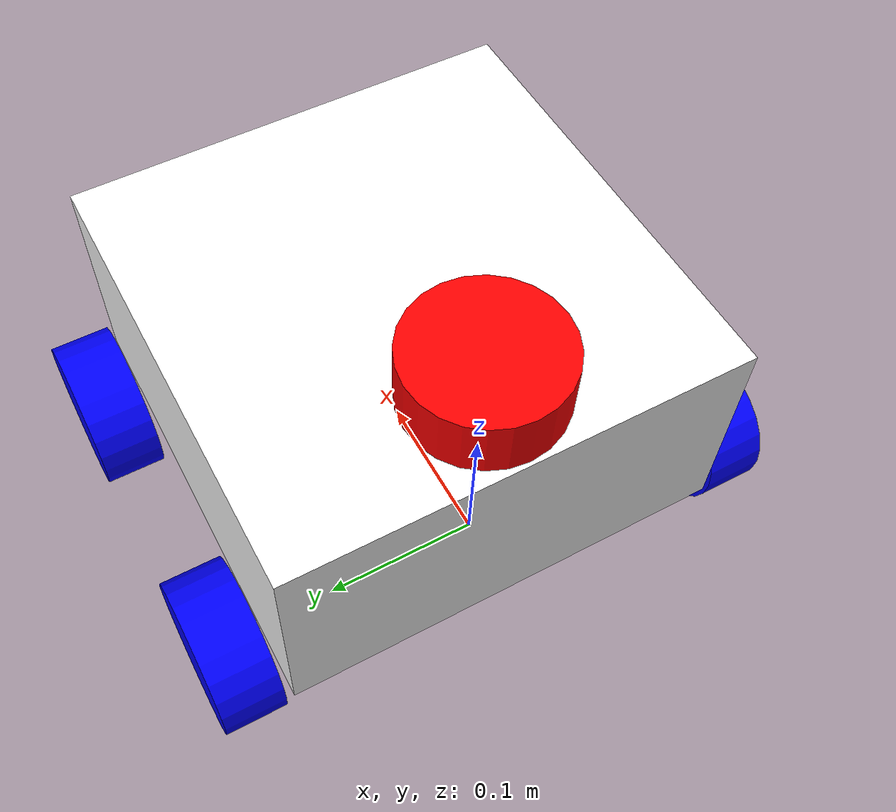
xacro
<?xml version="1.0"?>
<robot xmlns:xacro="http://www.ros.org/wiki/xacro"  name="robot">
    <xacro:arg name="use_ros2_control" default="true"/>

    <xacro:include filename="robot_core.xacro" />
    <!-- Switch between ros2_control and Gazebo integrated diff-drive control -->
    <xacro:if value="$(arg use_ros2_control)">
        <xacro:include filename="ros2_control.xacro" />
    </xacro:if>
    <xacro:unless value="$(arg use_ros2_control)">
        <xacro:include filename="gazebo_control.xacro" />
    </xacro:unless>
    <xacro:include filename="lidar.xacro" />
    <xacro:include filename="camera.xacro"/>
</robot>

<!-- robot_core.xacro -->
<robot xmlns:xacro="http://www.ros.org/wiki/xacro">

    <xacro:include filename="inertial_macros.xacro" />

    <material name="grey">
        <color rgba="0.2 0.2 0.2 1"/>
    </material>

    <material name="white">
        <color rgba="1 1 1 1"/>
    </material>

    <material name="orange">
        <color rgba="1 0.3 0.1 1"/>
    </material>

    <material name="blue">
        <color rgba="0 0 1 1"/>
    </material>

    <material name="red">
        <color rgba="1 0 0 1"/>
    </material>

    <link name="base">
        <inertial>
            <mass value="0.1"/>
            <inertia ixx="0.001" ixy="0" ixz="0" iyy="0.001" iyz="0" izz="0.001"/>
        </inertial>
    </link>

    <joint name="base_footprint_joint" type="fixed">
        <parent link="base"/>
        <child link="base_footprint"/>
        <origin xyz="0 0 0" rpy="0 0 0"/>
    </joint>

    <link name="base_footprint"></link>

    <joint name="chasis_joint" type="fixed">
        <parent link="base"/>
        <child link="chassis"/>
        <origin xyz="-0.1 0 0"/>
    </joint>

    <link name="chassis">
        <visual>
            <origin xyz="0.2 0 0.075"/>
            <geometry>
                <box size="0.3 0.3 0.15"/>
            </geometry>
            <material name="white"/>
        </visual>
        <collision>
            <origin xyz="0.2 0 0.075"/>
            <geometry>
                <box size="0.3 0.3 0.15"/>
            </geometry>
        </collision>
        <xacro:inertial_box mass="0.5" x="0.3" y="0.3" z="0.15">
            <origin xyz="0.15 0 0.075" rpy="0 0 0"/>
        </xacro:inertial_box>
    </link>

<!-- WHEELS -->
    <joint name="front_left_wheel_joint" type="continuous">
        <parent link="base"/>
        <child link="front_left_wheel"/>
        <origin xyz="0 0.175 0" rpy="${-pi/2} 0 0"/>
        <axis xyz="0 0 1"/>
    </joint>

    <link name="front_left_wheel">
        <visual>
            <geometry>
                <cylinder radius="0.05" length="0.04"/>
            </geometry>
            <material name="blue"/>
        </visual>
        <collision>
            <geometry>
                <cylinder radius="0.05" length="0.04"/>
            </geometry>
            <surface>
                <friction>
                    <ode>
                        <mu>1.0</mu>
                        <mu2>1.0</mu2>
                    </ode>
                </friction>
            </surface>
        </collision>
        <xacro:inertial_cylinder mass="0.1" length="0.04" radius="0.05">
            <origin xyz="0 0 0" rpy="0 0 0"/>
        </xacro:inertial_cylinder>
    </link>

    <joint name="front_right_wheel_joint" type="continuous">
        <parent link="base"/>
        <child link="front_right_wheel"/>
        <origin xyz="0 -0.175 0" rpy="${-pi/2} 0 0"/>
        <axis xyz="0 0 1"/>
    </joint>

    <link name="front_right_wheel">
        <visual>
            <geometry>
                <cylinder radius="0.05" length="0.04"/>
            </geometry>
            <material name="blue"/>
        </visual>
        <collision>
            <geometry>
                <cylinder radius="0.05" length="0.04"/>
            </geometry>
            <surface>
                <friction>
                    <ode>
                        <mu>1.0</mu>
                        <mu2>1.0</mu2>
                    </ode>
                </friction>
            </surface>
        </collision>
        <xacro:inertial_cylinder mass="0.1" length="0.04" radius="0.05">
            <origin xyz="0 0 0" rpy="0 0 0"/>
        </xacro:inertial_cylinder>
    </link>

    <joint name="back_left_wheel_joint" type="continuous">
        <parent link="base"/>
        <child link="back_left_wheel"/>
        <origin xyz="0.2 0.175 0" rpy="${-pi/2} 0 0"/>
        <axis xyz="0 0 1"/>
    </joint>

    <link name="back_left_wheel">
        <visual>
            <geometry>
                <cylinder radius="0.05" length="0.04"/>
            </geometry>
            <material name="blue"/>
        </visual>
        <collision>
            <geometry>
                <cylinder radius="0.05" length="0.04"/>
            </geometry>
        </collision>
        <xacro:inertial_cylinder mass="0.1" length="0.04" radius="0.05">
            <origin xyz="0 0 0" rpy="0 0 0"/>
        </xacro:inertial_cylinder>
    </link>

    <joint name="back_right_wheel_joint" type="continuous">
        <parent link="base"/>
        <child link="back_right_wheel"/>
        <origin xyz="0.2 -0.175 0" rpy="${-pi/2} 0 0"/>
        <axis xyz="0 0 1"/>
    </joint>

    <link name="back_right_wheel">
        <visual>
            <geometry>
                <cylinder radius="0.05" length="0.04"/>
            </geometry>
            <material name="blue"/>
        </visual>
        <collision>
            <geometry>
                <cylinder radius="0.05" length="0.04"/>
            </geometry>
        </collision>
        <xacro:inertial_cylinder mass="0.1" length="0.04" radius="0.05">
            <origin xyz="0 0 0" rpy="0 0 0"/>
        </xacro:inertial_cylinder>
    </link>

</robot>

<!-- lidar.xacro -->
<robot xmlns:xacro="http://www.ros.org/wiki/xacro" >

    <joint name="laser_joint" type="fixed">
        <parent link="chassis"/>
        <child link="laser_frame"/>
        <origin xyz="0.1 0 0.175" rpy="0 0 0"/>
    </joint>

    <link name="laser_frame">
        <visual>
            <geometry>
                <cylinder radius="0.05" length="0.04"/>
            </geometry>
            <material name="red"/>
        </visual>
        <collision>
            <geometry>
                <cylinder radius="0.05" length="0.04"/>
            </geometry>
        </collision>
        <xacro:inertial_cylinder mass="0.1" length="0.04" radius="0.05">
            <origin xyz="0 0 0" rpy="0 0 0"/>
        </xacro:inertial_cylinder>
    </link>

    <gazebo reference="laser_frame">
        <sensor name="laser" type="gpu_lidar">
            <pose> 0 0 0 0 0 0 </pose>
            <visualize>false</visualize>
            <update_rate>10</update_rate>
            <lidar>
                <scan>
                    <horizontal>
                        <samples>360</samples>
                        <min_angle>-3.14</min_angle>
                        <max_angle>3.14</max_angle>
                    </horizontal>
                </scan>
                <range>
                    <min>0.3</min>
                    <max>12</max>
                </range>
            </lidar>
            <topic>scan</topic>
            <frame_id>laser_frame</frame_id>
        </sensor>
    </gazebo>
</robot>

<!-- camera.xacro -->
<robot xmlns:xacro="http://www.ros.org/wiki/xacro">

    <joint name="camera_joint" type="fixed">
        <parent link="chassis"/>
        <child link="camera_link"/>
        <origin xyz="0.305 0 0.080" rpy="0 0 0"/>
    </joint>

    <link name="camera_link">
        <visual>
            <geometry>
                <box size="0.010 0.03 0.03"/>
            </geometry>
            <material name="red"/>
        </visual>
    </link>
    <joint name="camera_optical_joint" type="fixed">
        <origin xyz="0 0 0" rpy="${-pi/2} 0 ${-pi/2}" />
        <parent link="camera_link" />
        <child link="camera_link_optical" />
    </joint>

    <link name="camera_link_optical"></link>

    <gazebo reference="camera_link">
        <sensor name="camera" type="camera">
            <pose> 0 0 0 0 0 0 </pose>
            <visualize>true</visualize>
            <update_rate>10</update_rate>
            <camera>
                <camera_info_topic>camera/camera_info</camera_info_topic>
                <horizontal_fov>1.089</horizontal_fov>
                <image>
                    <format>R8G8B8</format>
                    <width>640</width>
                    <height>480</height>
                </image>
                <clip>
                    <near>0.05</near>
                    <far>8.0</far>
                </clip>
            </camera>
            <topic>camera/image_raw</topic>
            <gz_frame_id>camera_link_optical</gz_frame_id>
        </sensor>
    </gazebo>
</robot>
